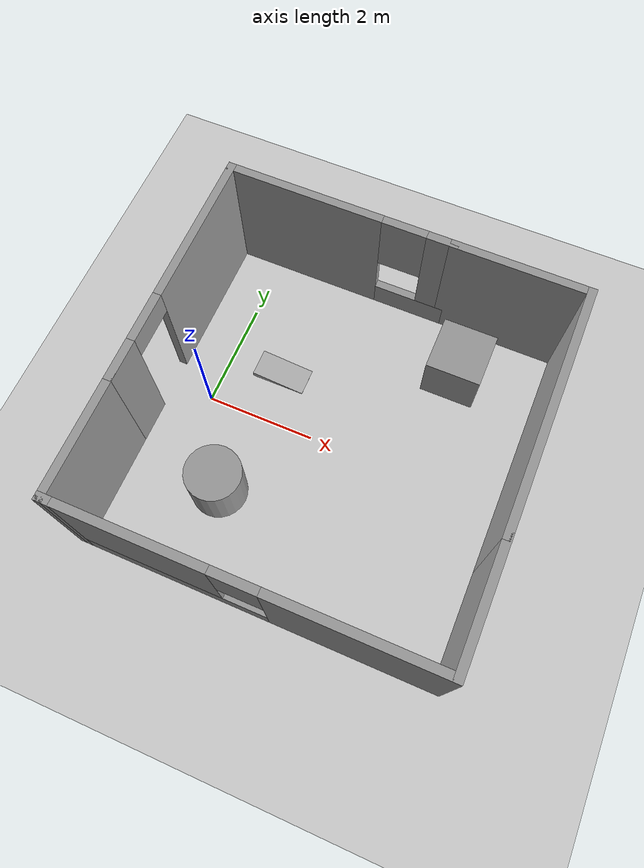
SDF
<sdf version="1.7">
 <world name="default">
  <model name="ground_plane">
   <static>1</static>
   <link name="link">
    <collision name="collision">
     <geometry><plane><normal>0 0 1</normal><size>100 100</size></plane></geometry>
     <surface>
      <contact><collide_bitmask>65535</collide_bitmask></contact>
      <friction><ode><mu>100</mu><mu2>50</mu2></ode></friction>
     </surface>
    </collision>
    <visual name="visual">
     <cast_shadows>0</cast_shadows>
     <geometry><plane><normal>0 0 1</normal><size>100 100</size></plane></geometry>
     <material>
      <script><uri>file://media/materials/scripts/gazebo.material</uri><name>Gazebo/Grey</name></script>
     </material>
    </visual>
   </link>
  </model>
  <light name="sun" type="directional">
   <pose>0 0 10 0 -0 0</pose>
   <diffuse>0.8 0.8 0.8 1</diffuse>
   <specular>0.2 0.2 0.2 1</specular>
   <attenuation>
    <range>1000</range>
    <constant>0.9</constant>
    <linear>0.01</linear>
    <quadratic>0.001</quadratic>
   </attenuation>
   <direction>-0.5 0.1 -0.9</direction>
   <spot><inner_angle>0</inner_angle><outer_angle>0</outer_angle><falloff>0</falloff></spot>
  </light>
  <scene><shadows>0</shadows><ambient>0.4 0.4 0.4 1</ambient><background>0.7 0.7 0.7 1</background></scene>
  <model name="box">
   <static>1</static>
   <pose>1 1 0 0 0.1 0</pose>
   <link name="link">
    <collision name="collision"><geometry><box><size>1 0.5 0.1</size></box></geometry></collision>
    <visual name="visual">
     <geometry><box><size>1 0.5 0.1</size></box></geometry>
     <cast_shadows>0</cast_shadows>
    </visual>
   </link>
  </model>
  <gravity>0 0 -9.8</gravity>
  <magnetic_field>6e-06 2.3e-05 -4.2e-05</magnetic_field>
  <atmosphere type="adiabatic"/>
  <physics type="ode">
   <max_step_size>0.001</max_step_size>
   <real_time_factor>1</real_time_factor>
   <real_time_update_rate>1000</real_time_update_rate>
  </physics>
  <spherical_coordinates>
   <surface_model>EARTH_WGS84</surface_model>
   <latitude_deg>0</latitude_deg>
   <longitude_deg>0</longitude_deg>
   <elevation>0</elevation>
   <heading_deg>0</heading_deg>
  </spherical_coordinates>
  <model name="square_world">
   <pose>2.395 0.005 0 0 -0 0</pose>
   <link name="Wall_1">
    <pose>-3.225 1.05 0 0 -0 1.5708</pose>
    <visual name="Wall_1_Visual_0">
     <pose>-1.86996 0 1.25 0 -0 0</pose>
     <geometry><box><size>0.760082 0.15 2.5</size></box></geometry>
     <material>
      <script><uri>file://media/materials/scripts/gazebo.material</uri><name>Gazebo/Grey</name></script>
      <ambient>1 1 1 1</ambient>
     </material>
     <meta><layer>0</layer></meta>
    </visual>
    <collision name="Wall_1_Collision_0">
     <geometry><box><size>0.760082 0.15 2.5</size></box></geometry>
     <pose>-1.86996 0 1.25 0 -0 0</pose>
    </collision>
    <visual name="Wall_1_Visual_1">
     <pose>0.830041 0 1.25 0 -0 0</pose>
     <geometry><box><size>2.83992 0.15 2.5</size></box></geometry>
     <material>
      <script><uri>file://media/materials/scripts/gazebo.material</uri><name>Gazebo/Grey</name></script>
      <ambient>1 1 1 1</ambient>
     </material>
     <meta><layer>0</layer></meta>
    </visual>
    <collision name="Wall_1_Collision_1">
     <geometry><box><size>2.83992 0.15 2.5</size></box></geometry>
     <pose>0.830041 0 1.25 0 -0 0</pose>
    </collision>
    <visual name="Wall_1_Visual_2">
     <pose>-1.03992 0 2.25 0 -0 0</pose>
     <geometry><box><size>0.9 0.15 0.5</size></box></geometry>
     <material>
      <script><uri>file://media/materials/scripts/gazebo.material</uri><name>Gazebo/Grey</name></script>
      <ambient>1 1 1 1</ambient>
     </material>
     <meta><layer>0</layer></meta>
    </visual>
    <collision name="Wall_1_Collision_2">
     <geometry><box><size>0.9 0.15 0.5</size></box></geometry>
     <pose>-1.03992 0 2.25 0 -0 0</pose>
    </collision>
   </link>
   <link name="Wall_2">
    <pose>-1.175 3.225 0 0 -0 0</pose>
    <visual name="Wall_2_Visual_0">
     <pose>-0.676675 0 1.25 0 -0 0</pose>
     <geometry><box><size>2.89665 0.15 2.5</size></box></geometry>
     <material>
      <script><uri>file://media/materials/scripts/gazebo.material</uri><name>Gazebo/Grey</name></script>
      <ambient>1 1 1 1</ambient>
     </material>
     <meta><layer>0</layer></meta>
    </visual>
    <collision name="Wall_2_Collision_0">
     <geometry><box><size>2.89665 0.15 2.5</size></box></geometry>
     <pose>-0.676675 0 1.25 0 -0 0</pose>
    </collision>
    <visual name="Wall_2_Visual_1">
     <pose>1.44833 0 0.25 0 -0 0</pose>
     <geometry><box><size>1.35335 0.15 0.5</size></box></geometry>
     <material>
      <script><uri>file://media/materials/scripts/gazebo.material</uri><name>Gazebo/Grey</name></script>
      <ambient>1 1 1 1</ambient>
     </material>
     <meta><layer>0</layer></meta>
    </visual>
    <collision name="Wall_2_Collision_1">
     <geometry><box><size>1.35335 0.15 0.5</size></box></geometry>
     <pose>1.44833 0 0.25 0 -0 0</pose>
    </collision>
    <visual name="Wall_2_Visual_2">
     <pose>1.84832 0 1.5 0 -0 0</pose>
     <geometry><box><size>0.553351 0.15 2</size></box></geometry>
     <material>
      <script><uri>file://media/materials/scripts/gazebo.material</uri><name>Gazebo/Grey</name></script>
      <ambient>1 1 1 1</ambient>
     </material>
     <meta><layer>0</layer></meta>
    </visual>
    <collision name="Wall_2_Collision_2">
     <geometry><box><size>0.553351 0.15 2</size></box></geometry>
     <pose>1.84832 0 1.5 0 -0 0</pose>
    </collision>
    <visual name="Wall_2_Visual_3">
     <pose>1.17165 0 1.9 0 -0 0</pose>
     <geometry><box><size>0.8 0.15 1.2</size></box></geometry>
     <material>
      <script><uri>file://media/materials/scripts/gazebo.material</uri><name>Gazebo/Grey</name></script>
      <ambient>1 1 1 1</ambient>
     </material>
     <meta><layer>0</layer></meta>
    </visual>
    <collision name="Wall_2_Collision_3">
     <geometry><box><size>0.8 0.15 1.2</size></box></geometry>
     <pose>1.17165 0 1.9 0 -0 0</pose>
    </collision>
   </link>
   <link name="Wall_3">
    <collision name="Wall_3_Collision">
     <geometry><box><size>2.5 0.15 2.5</size></box></geometry>
     <pose>0 0 1.25 0 -0 0</pose>
    </collision>
    <visual name="Wall_3_Visual">
     <pose>0 0 1.25 0 -0 0</pose>
     <geometry><box><size>2.5 0.15 2.5</size></box></geometry>
     <material>
      <script><uri>file://media/materials/scripts/gazebo.material</uri><name>Gazebo/Grey</name></script>
      <ambient>1 1 1 1</ambient>
     </material>
     <meta><layer>0</layer></meta>
    </visual>
    <pose>2.05 3.225 0 0 -0 0</pose>
   </link>
   <link name="Wall_4">
    <collision name="Wall_4_Collision">
     <geometry><box><size>4.5 0.15 2.5</size></box></geometry>
     <pose>0 0 1.25 0 -0 0</pose>
    </collision>
    <visual name="Wall_4_Visual">
     <pose>0 0 1.25 0 -0 0</pose>
     <geometry><box><size>4.5 0.15 2.5</size></box></geometry>
     <material>
      <script><uri>file://media/materials/scripts/gazebo.material</uri><name>Gazebo/Grey</name></script>
      <ambient>1 1 1 1</ambient>
     </material>
     <meta><layer>0</layer></meta>
    </visual>
    <pose>3.225 1.05 0 0 -0 -1.5708</pose>
   </link>
   <link name="Wall_5">
    <collision name="Wall_5_Collision">
     <geometry><box><size>2.25 0.15 2.5</size></box></geometry>
     <pose>0 0 1.25 0 -0 0</pose>
    </collision>
    <visual name="Wall_5_Visual">
     <pose>0 0 1.25 0 -0 0</pose>
     <geometry><box><size>2.25 0.15 2.5</size></box></geometry>
     <material>
      <script><uri>file://media/materials/scripts/gazebo.material</uri><name>Gazebo/Grey</name></script>
      <ambient>1 1 1 1</ambient>
     </material>
     <meta><layer>0</layer></meta>
    </visual>
    <pose>3.225 -2.175 0 0 -0 -1.5708</pose>
   </link>
   <link name="Wall_6">
    <pose>0.05 -3.225 0 0 -0 3.14159</pose>
    <visual name="Wall_6_Visual_0">
     <pose>-1.74512 0 1.25 0 -0 0</pose>
     <geometry><box><size>3.00975 0.15 2.5</size></box></geometry>
     <material>
      <script><uri>file://media/materials/scripts/gazebo.material</uri><name>Gazebo/Grey</name></script>
      <ambient>1 1 1 1</ambient>
     </material>
     <meta><layer>0</layer></meta>
    </visual>
    <collision name="Wall_6_Collision_0">
     <geometry><box><size>3.00975 0.15 2.5</size></box></geometry>
     <pose>-1.74512 0 1.25 0 -0 0</pose>
    </collision>
    <visual name="Wall_6_Visual_1">
     <pose>1.50488 0 0.25 0 -0 0</pose>
     <geometry><box><size>3.49025 0.15 0.5</size></box></geometry>
     <material>
      <script><uri>file://media/materials/scripts/gazebo.material</uri><name>Gazebo/Grey</name></script>
      <ambient>1 1 1 1</ambient>
     </material>
     <meta><layer>0</layer></meta>
    </visual>
    <collision name="Wall_6_Collision_1">
     <geometry><box><size>3.49025 0.15 0.5</size></box></geometry>
     <pose>1.50488 0 0.25 0 -0 0</pose>
    </collision>
    <visual name="Wall_6_Visual_2">
     <pose>1.90488 0 1.5 0 -0 0</pose>
     <geometry><box><size>2.69025 0.15 2</size></box></geometry>
     <material>
      <script><uri>file://media/materials/scripts/gazebo.material</uri><name>Gazebo/Grey</name></script>
      <ambient>1 1 1 1</ambient>
     </material>
     <meta><layer>0</layer></meta>
    </visual>
    <collision name="Wall_6_Collision_2">
     <geometry><box><size>2.69025 0.15 2</size></box></geometry>
     <pose>1.90488 0 1.5 0 -0 0</pose>
    </collision>
    <visual name="Wall_6_Visual_3">
     <pose>0.159751 0 1.9 0 -0 0</pose>
     <geometry><box><size>0.8 0.15 1.2</size></box></geometry>
     <material>
      <script><uri>file://media/materials/scripts/gazebo.material</uri><name>Gazebo/Grey</name></script>
      <ambient>1 1 1 1</ambient>
     </material>
     <meta><layer>0</layer></meta>
    </visual>
    <collision name="Wall_6_Collision_3">
     <geometry><box><size>0.8 0.15 1.2</size></box></geometry>
     <pose>0.159751 0 1.9 0 -0 0</pose>
    </collision>
   </link>
   <link name="Wall_7">
    <collision name="Wall_7_Collision">
     <geometry><box><size>0.25 0.15 2.5</size></box></geometry>
     <pose>0 0 1.25 0 -0 0</pose>
    </collision>
    <visual name="Wall_7_Visual">
     <pose>0 0 1.25 0 -0 0</pose>
     <geometry><box><size>0.25 0.15 2.5</size></box></geometry>
     <material>
      <script><uri>file://media/materials/scripts/gazebo.material</uri><name>Gazebo/Grey</name></script>
      <ambient>1 1 1 1</ambient>
     </material>
     <meta><layer>0</layer></meta>
    </visual>
    <pose>-3.175 -3.225 0 0 -0 3.14159</pose>
   </link>
   <link name="Wall_8">
    <collision name="Wall_8_Collision">
     <geometry><box><size>2.25 0.15 2.5</size></box></geometry>
     <pose>0 0 1.25 0 -0 0</pose>
    </collision>
    <visual name="Wall_8_Visual">
     <pose>0 0 1.25 0 -0 0</pose>
     <geometry><box><size>2.25 0.15 2.5</size></box></geometry>
     <material>
      <script><uri>file://media/materials/scripts/gazebo.material</uri><name>Gazebo/Grey</name></script>
      <ambient>1 1 1 1</ambient>
     </material>
     <meta><layer>0</layer></meta>
    </visual>
    <pose>-3.225 -2.175 0 0 -0 1.5708</pose>
   </link>
   <static>1</static>
  </model>
  <model name="unit_cylinder">
   <pose>0.917858 -1.53978 0.499993 -3e-06 -4e-06 -0</pose>
   <link name="link">
    <inertial>
     <mass>1</mass>
     <inertia><ixx>0.145833</ixx><ixy>0</ixy><ixz>0</ixz><iyy>0.145833</iyy><iyz>0</iyz><izz>0.125</izz></inertia>
    </inertial>
    <collision name="collision">
     <geometry><cylinder><radius>0.5</radius><length>1</length></cylinder></geometry>
    </collision>
    <visual name="visual">
     <geometry><cylinder><radius>0.5</radius><length>1</length></cylinder></geometry>
     <material>
      <script><name>Gazebo/Grey</name><uri>file://media/materials/scripts/gazebo.material</uri></script>
     </material>
    </visual>
   </link>
  </model>
  <model name="unit_box">
   <pose>3.99835 2.21071 0.499995 1e-05 -0 0</pose>
   <link name="link">
    <inertial>
     <mass>1</mass>
     <inertia>
      <ixx>0.166667</ixx>
      <ixy>0</ixy>
      <ixz>0</ixz>
      <iyy>0.166667</iyy>
      <iyz>0</iyz>
      <izz>0.166667</izz>
     </inertia>
    </inertial>
    <collision name="collision"><geometry><box><size>1 1 1</size></box></geometry></collision>
    <visual name="visual">
     <geometry><box><size>1 1 1</size></box></geometry>
     <material>
      <script><name>Gazebo/Grey</name><uri>file://media/materials/scripts/gazebo.material</uri></script>
     </material>
    </visual>
   </link>
  </model>
 </world>
</sdf>
